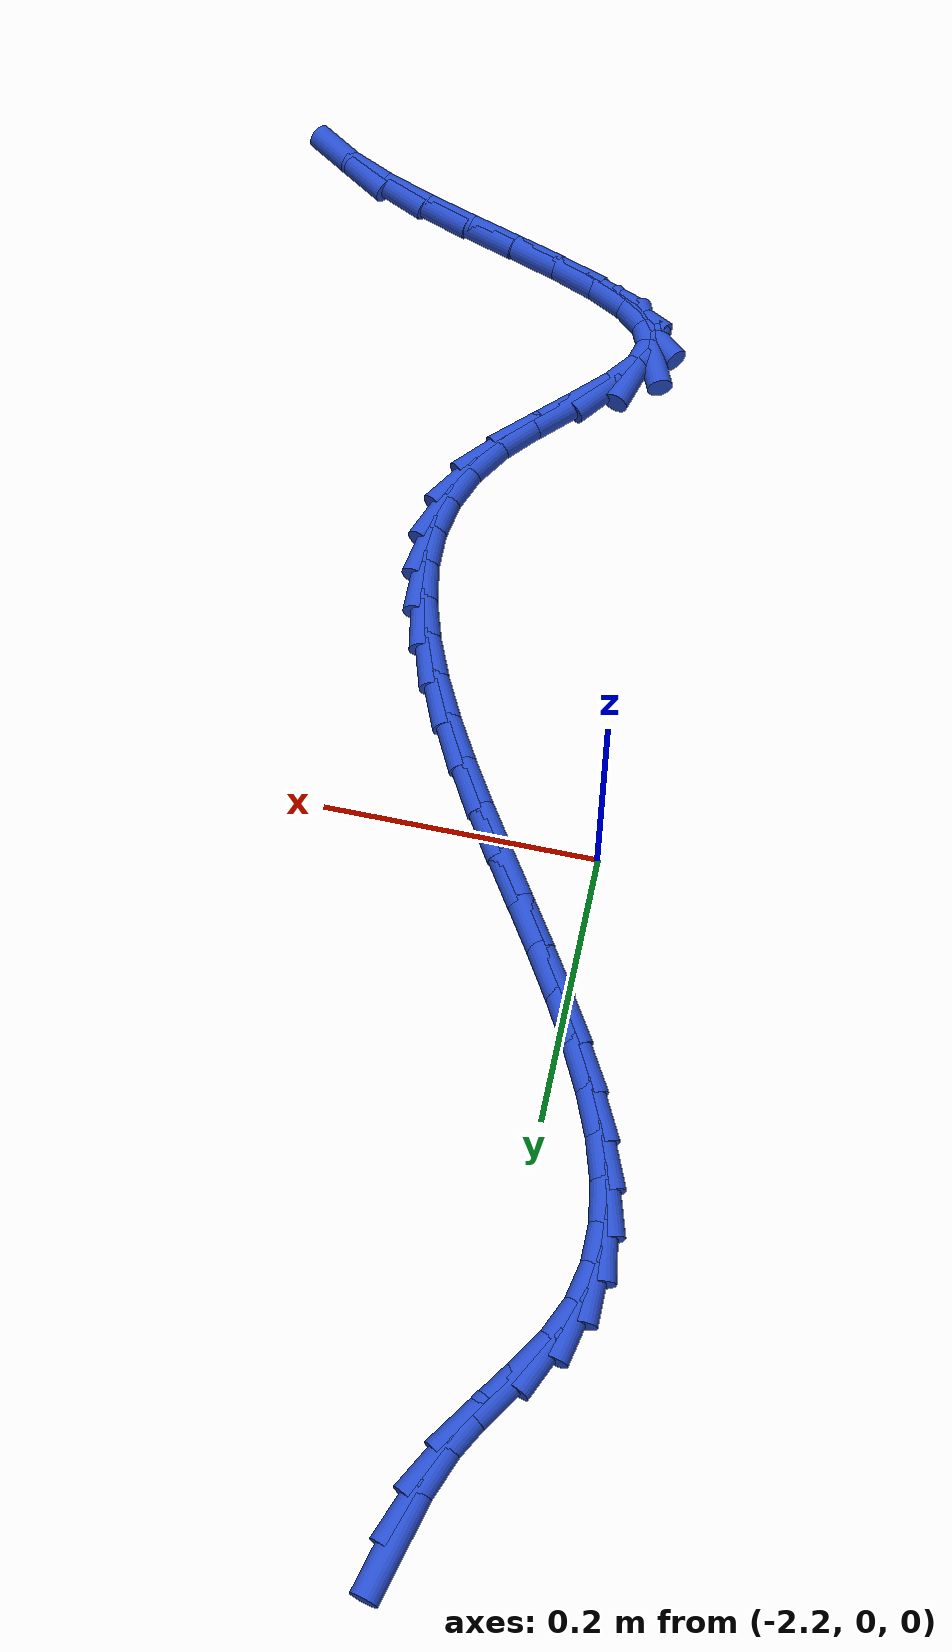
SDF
<sdf version="1.6">
 <world name="default">
  <model name="ground_plane">
   <static>1</static>
   <link name="link">
    <collision name="collision">
     <geometry><plane><normal>0 0 1</normal><size>100 100</size></plane></geometry>
     <surface><friction><ode><mu>100</mu><mu2>50</mu2></ode></friction></surface>
    </collision>
    <visual name="visual">
     <cast_shadows>0</cast_shadows>
     <geometry><plane><normal>0 0 1</normal><size>100 100</size></plane></geometry>
     <material>
      <script><uri>file://media/materials/scripts/gazebo.material</uri><name>Gazebo/WhiteGlow</name></script>
     </material>
    </visual>
   </link>
  </model>
  <model name="line">
   <link name="link_105">
    <pose>-2.166392597063999 0.49061659449763584 0.01 0 1.57 1.3138846447954526</pose>
    <collision name="collision">
     <geometry><cylinder><radius>0.01</radius><length>0.08</length></cylinder></geometry>
    </collision>
    <visual name="visual">
     <material>
      <script><name>Gazebo/Blue</name><uri>file://media/materials/scripts/gazebo.material</uri></script>
     </material>
     <geometry><cylinder><radius>0.01</radius><length>0.08</length></cylinder></geometry>
    </visual>
   </link>
   <link name="link_106">
    <pose>-2.1748294054325177 0.45850296532958423 0.01 0 1.57 1.2026230256502024</pose>
    <collision name="collision">
     <geometry><cylinder><radius>0.01</radius><length>0.08</length></cylinder></geometry>
    </collision>
    <visual name="visual">
     <material>
      <script><name>Gazebo/Blue</name><uri>file://media/materials/scripts/gazebo.material</uri></script>
     </material>
     <geometry><cylinder><radius>0.01</radius><length>0.08</length></cylinder></geometry>
    </visual>
   </link>
   <link name="link_107">
    <pose>-2.1866053342522225 0.4279766462369585 0.01 0 1.57 1.063967401844877</pose>
    <collision name="collision">
     <geometry><cylinder><radius>0.01</radius><length>0.08</length></cylinder></geometry>
    </collision>
    <visual name="visual">
     <material>
      <script><name>Gazebo/Blue</name><uri>file://media/materials/scripts/gazebo.material</uri></script>
     </material>
     <geometry><cylinder><radius>0.01</radius><length>0.08</length></cylinder></geometry>
    </visual>
   </link>
   <link name="link_108">
    <pose>-2.202412725093497 0.39950526583668833 0.01 0 1.57 0.9683545614591776</pose>
    <collision name="collision">
     <geometry><cylinder><radius>0.01</radius><length>0.08</length></cylinder></geometry>
    </collision>
    <visual name="visual">
     <material>
      <script><name>Gazebo/Blue</name><uri>file://media/materials/scripts/gazebo.material</uri></script>
     </material>
     <geometry><cylinder><radius>0.01</radius><length>0.08</length></cylinder></geometry>
    </visual>
   </link>
   <link name="link_109">
    <pose>-2.2207858610285784 0.37278954225350963 0.01 0 1.57 0.9926242602724146</pose>
    <collision name="collision">
     <geometry><cylinder><radius>0.01</radius><length>0.08</length></cylinder></geometry>
    </collision>
    <visual name="visual">
     <material>
      <script><name>Gazebo/Blue</name><uri>file://media/materials/scripts/gazebo.material</uri></script>
     </material>
     <geometry><cylinder><radius>0.01</radius><length>0.08</length></cylinder></geometry>
    </visual>
   </link>
   <link name="link_110">
    <pose>-2.237831922253378 0.3466676726642364 0.01 0 1.57 1.1502114993911183</pose>
    <collision name="collision">
     <geometry><cylinder><radius>0.01</radius><length>0.08</length></cylinder></geometry>
    </collision>
    <visual name="visual">
     <material>
      <script><name>Gazebo/Blue</name><uri>file://media/materials/scripts/gazebo.material</uri></script>
     </material>
     <geometry><cylinder><radius>0.01</radius><length>0.08</length></cylinder></geometry>
    </visual>
   </link>
   <link name="link_111">
    <pose>-2.249761268795965 0.3199964564878411 0.01 0 1.57 1.3669415555956064</pose>
    <collision name="collision">
     <geometry><cylinder><radius>0.01</radius><length>0.08</length></cylinder></geometry>
    </collision>
    <visual name="visual">
     <material>
      <script><name>Gazebo/Blue</name><uri>file://media/materials/scripts/gazebo.material</uri></script>
     </material>
     <geometry><cylinder><radius>0.01</radius><length>0.08</length></cylinder></geometry>
    </visual>
   </link>
   <link name="link_112">
    <pose>-2.255470620269235 0.2923785397529792 0.01 0 1.57 1.5668667545896071</pose>
    <collision name="collision">
     <geometry><cylinder><radius>0.01</radius><length>0.08</length></cylinder></geometry>
    </collision>
    <visual name="visual">
     <material>
      <script><name>Gazebo/Blue</name><uri>file://media/materials/scripts/gazebo.material</uri></script>
     </material>
     <geometry><cylinder><radius>0.01</radius><length>0.08</length></cylinder></geometry>
    </visual>
   </link>
   <link name="link_113">
    <pose>-2.255582546074941 0.263895737107844 0.01 0 1.57 -1.4070392870814017</pose>
    <collision name="collision">
     <geometry><cylinder><radius>0.01</radius><length>0.08</length></cylinder></geometry>
    </collision>
    <visual name="visual">
     <material>
      <script><name>Gazebo/Blue</name><uri>file://media/materials/scripts/gazebo.material</uri></script>
     </material>
     <geometry><cylinder><radius>0.01</radius><length>0.08</length></cylinder></geometry>
    </visual>
   </link>
   <link name="link_114">
    <pose>-2.250748054225831 0.23463775895729272 0.01 0 1.57 -1.2748457538411404</pose>
    <collision name="collision">
     <geometry><cylinder><radius>0.01</radius><length>0.08</length></cylinder></geometry>
    </collision>
    <visual name="visual">
     <material>
      <script><name>Gazebo/Blue</name><uri>file://media/materials/scripts/gazebo.material</uri></script>
     </material>
     <geometry><cylinder><radius>0.01</radius><length>0.08</length></cylinder></geometry>
    </visual>
   </link>
   <link name="link_115">
    <pose>-2.2416181527346555 0.20469431570618296 0.01 0 1.57 -1.1746210812547353</pose>
    <collision name="collision">
     <geometry><cylinder><radius>0.01</radius><length>0.08</length></cylinder></geometry>
    </collision>
    <visual name="visual">
     <material>
      <script><name>Gazebo/Blue</name><uri>file://media/materials/scripts/gazebo.material</uri></script>
     </material>
     <geometry><cylinder><radius>0.01</radius><length>0.08</length></cylinder></geometry>
    </visual>
   </link>
   <link name="link_116">
    <pose>-2.2288438496141616 0.17415511775937198 0.01 0 1.57 -1.1008533644518215</pose>
    <collision name="collision">
     <geometry><cylinder><radius>0.01</radius><length>0.08</length></cylinder></geometry>
    </collision>
    <visual name="visual">
     <material>
      <script><name>Gazebo/Blue</name><uri>file://media/materials/scripts/gazebo.material</uri></script>
     </material>
     <geometry><cylinder><radius>0.01</radius><length>0.08</length></cylinder></geometry>
    </visual>
   </link>
   <link name="link_117">
    <pose>-2.2130761528770972 0.1431098755217173 0.01 0 1.57 -1.0484921693017508</pose>
    <collision name="collision">
     <geometry><cylinder><radius>0.01</radius><length>0.08</length></cylinder></geometry>
    </collision>
    <visual name="visual">
     <material>
      <script><name>Gazebo/Blue</name><uri>file://media/materials/scripts/gazebo.material</uri></script>
     </material>
     <geometry><cylinder><radius>0.01</radius><length>0.08</length></cylinder></geometry>
    </visual>
   </link>
   <link name="link_118">
    <pose>-2.1949660705362124 0.11164829939807638 0.01 0 1.57 -1.013695168403488</pose>
    <collision name="collision">
     <geometry><cylinder><radius>0.01</radius><length>0.08</length></cylinder></geometry>
    </collision>
    <visual name="visual">
     <material>
      <script><name>Gazebo/Blue</name><uri>file://media/materials/scripts/gazebo.material</uri></script>
     </material>
     <geometry><cylinder><radius>0.01</radius><length>0.08</length></cylinder></geometry>
    </visual>
   </link>
   <link name="link_119">
    <pose>-2.175164610604255 0.07986009979330663 0.01 0 1.57 -0.9938614183253438</pose>
    <collision name="collision">
     <geometry><cylinder><radius>0.01</radius><length>0.08</length></cylinder></geometry>
    </collision>
    <visual name="visual">
     <material>
      <script><name>Gazebo/Blue</name><uri>file://media/materials/scripts/gazebo.material</uri></script>
     </material>
     <geometry><cylinder><radius>0.01</radius><length>0.08</length></cylinder></geometry>
    </visual>
   </link>
   <link name="link_120">
    <pose>-2.154322781093973 0.047834987112265935 0.01 0 1.57 -0.9874782524019726</pose>
    <collision name="collision">
     <geometry><cylinder><radius>0.01</radius><length>0.08</length></cylinder></geometry>
    </collision>
    <visual name="visual">
     <material>
      <script><name>Gazebo/Blue</name><uri>file://media/materials/scripts/gazebo.material</uri></script>
     </material>
     <geometry><cylinder><radius>0.01</radius><length>0.08</length></cylinder></geometry>
    </visual>
   </link>
   <link name="link_121">
    <pose>-2.1330915900181164 0.01566267175981084 0.01 0 1.57 -0.9939812965675945</pose>
    <collision name="collision">
     <geometry><cylinder><radius>0.01</radius><length>0.08</length></cylinder></geometry>
    </collision>
    <visual name="visual">
     <material>
      <script><name>Gazebo/Blue</name><uri>file://media/materials/scripts/gazebo.material</uri></script>
     </material>
     <geometry><cylinder><radius>0.01</radius><length>0.08</length></cylinder></geometry>
    </visual>
   </link>
   <link name="link_122">
    <pose>-2.112122045389432 -0.016567135859200777 0.01 0 1.57 -1.0136859120466164</pose>
    <collision name="collision">
     <geometry><cylinder><radius>0.01</radius><length>0.08</length></cylinder></geometry>
    </collision>
    <visual name="visual">
     <material>
      <script><name>Gazebo/Blue</name><uri>file://media/materials/scripts/gazebo.material</uri></script>
     </material>
     <geometry><cylinder><radius>0.01</radius><length>0.08</length></cylinder></geometry>
    </visual>
   </link>
   <link name="link_123">
    <pose>-2.092065155220668 -0.04876472533991143 0.01 0 1.57 -1.0477978351316828</pose>
    <collision name="collision">
     <geometry><cylinder><radius>0.01</radius><length>0.08</length></cylinder></geometry>
    </collision>
    <visual name="visual">
     <material>
      <script><name>Gazebo/Blue</name><uri>file://media/materials/scripts/gazebo.material</uri></script>
     </material>
     <geometry><cylinder><radius>0.01</radius><length>0.08</length></cylinder></geometry>
    </visual>
   </link>
   <link name="link_124">
    <pose>-2.0735719275245756 -0.08084038627746379 0.01 0 1.57 -1.0984859939159963</pose>
    <collision name="collision">
     <geometry><cylinder><radius>0.01</radius><length>0.08</length></cylinder></geometry>
    </collision>
    <visual name="visual">
     <material>
      <script><name>Gazebo/Blue</name><uri>file://media/materials/scripts/gazebo.material</uri></script>
     </material>
     <geometry><cylinder><radius>0.01</radius><length>0.08</length></cylinder></geometry>
    </visual>
   </link>
   <link name="link_125">
    <pose>-2.0572933703139005 -0.11270440826700036 0.01 0 1.57 -1.1689594166580637</pose>
    <collision name="collision">
     <geometry><cylinder><radius>0.01</radius><length>0.08</length></cylinder></geometry>
    </collision>
    <visual name="visual">
     <material>
      <script><name>Gazebo/Blue</name><uri>file://media/materials/scripts/gazebo.material</uri></script>
     </material>
     <geometry><cylinder><radius>0.01</radius><length>0.08</length></cylinder></geometry>
    </visual>
   </link>
   <link name="link_126">
    <pose>-2.0438804916013926 -0.1442670809036637 0.01 0 1.57 -1.2633859699856875</pose>
    <collision name="collision">
     <geometry><cylinder><radius>0.01</radius><length>0.08</length></cylinder></geometry>
    </collision>
    <visual name="visual">
     <material>
      <script><name>Gazebo/Blue</name><uri>file://media/materials/scripts/gazebo.material</uri></script>
     </material>
     <geometry><cylinder><radius>0.01</radius><length>0.08</length></cylinder></geometry>
    </visual>
   </link>
   <link name="link_127">
    <pose>-2.0339842993998003 -0.1754386937825964 0.01 0 1.57 -1.3862680014800317</pose>
    <collision name="collision">
     <geometry><cylinder><radius>0.01</radius><length>0.08</length></cylinder></geometry>
    </collision>
    <visual name="visual">
     <material>
      <script><name>Gazebo/Blue</name><uri>file://media/materials/scripts/gazebo.material</uri></script>
     </material>
     <geometry><cylinder><radius>0.01</radius><length>0.08</length></cylinder></geometry>
    </visual>
   </link>
   <link name="link_128">
    <pose>-2.0282558017218717 -0.20612953649894095 0.01 0 1.57 -1.5406001890095606</pose>
    <collision name="collision">
     <geometry><cylinder><radius>0.01</radius><length>0.08</length></cylinder></geometry>
    </collision>
    <visual name="visual">
     <material>
      <script><name>Gazebo/Blue</name><uri>file://media/materials/scripts/gazebo.material</uri></script>
     </material>
     <geometry><cylinder><radius>0.01</radius><length>0.08</length></cylinder></geometry>
    </visual>
   </link>
   <link name="link_129">
    <pose>-2.027346006580356 -0.23624989864784002 0.01 0 1.57 1.4172325480909496</pose>
    <collision name="collision">
     <geometry><cylinder><radius>0.01</radius><length>0.08</length></cylinder></geometry>
    </collision>
    <visual name="visual">
     <material>
      <script><name>Gazebo/Blue</name><uri>file://media/materials/scripts/gazebo.material</uri></script>
     </material>
     <geometry><cylinder><radius>0.01</radius><length>0.08</length></cylinder></geometry>
    </visual>
   </link>
   <link name="link_130">
    <pose>-2.0319059219880007 -0.2657100698244361 0.01 0 1.57 1.2146457292525412</pose>
    <collision name="collision">
     <geometry><cylinder><radius>0.01</radius><length>0.08</length></cylinder></geometry>
    </collision>
    <visual name="visual">
     <material>
      <script><name>Gazebo/Blue</name><uri>file://media/materials/scripts/gazebo.material</uri></script>
     </material>
     <geometry><cylinder><radius>0.01</radius><length>0.08</length></cylinder></geometry>
    </visual>
   </link>
   <link name="link_131">
    <pose>-2.0425865559575556 -0.2944203396238718 0.01 0 1.57 1.011427321078649</pose>
    <collision name="collision">
     <geometry><cylinder><radius>0.01</radius><length>0.08</length></cylinder></geometry>
    </collision>
    <visual name="visual">
     <material>
      <script><name>Gazebo/Blue</name><uri>file://media/materials/scripts/gazebo.material</uri></script>
     </material>
     <geometry><cylinder><radius>0.01</radius><length>0.08</length></cylinder></geometry>
    </visual>
   </link>
   <link name="link_132">
    <pose>-2.0600354586276772 -0.3222908309960116 0.01 0 1.57 0.8513179049936774</pose>
    <collision name="collision">
     <geometry><cylinder><radius>0.01</radius><length>0.08</length></cylinder></geometry>
    </collision>
    <visual name="visual">
     <material>
      <script><name>Gazebo/Blue</name><uri>file://media/materials/scripts/gazebo.material</uri></script>
     </material>
     <geometry><cylinder><radius>0.01</radius><length>0.08</length></cylinder></geometry>
    </visual>
   </link>
   <link name="link_133">
    <pose>-2.083583975813405 -0.3491682350740047 0.01 0 1.57 0.7831837263390689</pose>
    <collision name="collision">
     <geometry><cylinder><radius>0.01</radius><length>0.08</length></cylinder></geometry>
    </collision>
    <visual name="visual">
     <material>
      <script><name>Gazebo/Blue</name><uri>file://media/materials/scripts/gazebo.material</uri></script>
     </material>
     <geometry><cylinder><radius>0.01</radius><length>0.08</length></cylinder></geometry>
    </visual>
   </link>
   <link name="link_134">
    <pose>-2.1092697586779963 -0.3747405100103234 0.01 0 1.57 0.7975962454983031</pose>
    <collision name="collision">
     <geometry><cylinder><radius>0.01</radius><length>0.08</length></cylinder></geometry>
    </collision>
    <visual name="visual">
     <material>
      <script><name>Gazebo/Blue</name><uri>file://media/materials/scripts/gazebo.material</uri></script>
     </material>
     <geometry><cylinder><radius>0.01</radius><length>0.08</length></cylinder></geometry>
    </visual>
   </link>
   <link name="link_135">
    <pose>-2.1326236275365593 -0.39867118826540415 0.01 0 1.57 0.9247254869982229</pose>
    <collision name="collision">
     <geometry><cylinder><radius>0.01</radius><length>0.08</length></cylinder></geometry>
    </collision>
    <visual name="visual">
     <material>
      <script><name>Gazebo/Blue</name><uri>file://media/materials/scripts/gazebo.material</uri></script>
     </material>
     <geometry><cylinder><radius>0.01</radius><length>0.08</length></cylinder></geometry>
    </visual>
   </link>
   <link name="link_136">
    <pose>-2.1491764027042093 -0.42062380229968344 0.01 0 1.57 1.3040360797091823</pose>
    <collision name="collision">
     <geometry><cylinder><radius>0.01</radius><length>0.08</length></cylinder></geometry>
    </collision>
    <visual name="visual">
     <material>
      <script><name>Gazebo/Blue</name><uri>file://media/materials/scripts/gazebo.material</uri></script>
     </material>
     <geometry><cylinder><radius>0.01</radius><length>0.08</length></cylinder></geometry>
    </visual>
   </link>
   <link name="link_137">
    <pose>-2.1545458431613596 -0.4402724088359977 0.01 0 1.57 -1.1717308039247594</pose>
    <collision name="collision">
     <geometry><cylinder><radius>0.01</radius><length>0.08</length></cylinder></geometry>
    </collision>
    <visual name="visual">
     <material>
      <script><name>Gazebo/Blue</name><uri>file://media/materials/scripts/gazebo.material</uri></script>
     </material>
     <geometry><cylinder><radius>0.01</radius><length>0.08</length></cylinder></geometry>
    </visual>
   </link>
   <link name="link_138">
    <pose>-2.1472225581537447 -0.4576388342566753 0.01 0 1.57 -0.7099919715146517</pose>
    <collision name="collision">
     <geometry><cylinder><radius>0.01</radius><length>0.08</length></cylinder></geometry>
    </collision>
    <visual name="visual">
     <material>
      <script><name>Gazebo/Blue</name><uri>file://media/materials/scripts/gazebo.material</uri></script>
     </material>
     <geometry><cylinder><radius>0.01</radius><length>0.08</length></cylinder></geometry>
    </visual>
   </link>
   <link name="link_139">
    <pose>-2.1291597685919412 -0.4731640675068019 0.01 0 1.57 -0.4882154766300119</pose>
    <collision name="collision">
     <geometry><cylinder><radius>0.01</radius><length>0.08</length></cylinder></geometry>
    </collision>
    <visual name="visual">
     <material>
      <script><name>Gazebo/Blue</name><uri>file://media/materials/scripts/gazebo.material</uri></script>
     </material>
     <geometry><cylinder><radius>0.01</radius><length>0.08</length></cylinder></geometry>
    </visual>
   </link>
   <link name="link_140">
    <pose>-2.102516876930998 -0.4873140566065609 0.01 0 1.57 -0.38090409606596376</pose>
    <collision name="collision">
     <geometry><cylinder><radius>0.01</radius><length>0.08</length></cylinder></geometry>
    </collision>
    <visual name="visual">
     <material>
      <script><name>Gazebo/Blue</name><uri>file://media/materials/scripts/gazebo.material</uri></script>
     </material>
     <geometry><cylinder><radius>0.01</radius><length>0.08</length></cylinder></geometry>
    </visual>
   </link>
   <link name="link_141">
    <pose>-2.0694532856259658 -0.5005547495761354 0.01 0 1.57 -0.33030311408001256</pose>
    <collision name="collision">
     <geometry><cylinder><radius>0.01</radius><length>0.08</length></cylinder></geometry>
    </collision>
    <visual name="visual">
     <material>
      <script><name>Gazebo/Blue</name><uri>file://media/materials/scripts/gazebo.material</uri></script>
     </material>
     <geometry><cylinder><radius>0.01</radius><length>0.08</length></cylinder></geometry>
    </visual>
   </link>
   <link name="link_142">
    <pose>-2.03212839713189 -0.5133520944357085 0.01 0 1.57 -0.31437504552106865</pose>
    <collision name="collision">
     <geometry><cylinder><radius>0.01</radius><length>0.08</length></cylinder></geometry>
    </collision>
    <visual name="visual">
     <material>
      <script><name>Gazebo/Blue</name><uri>file://media/materials/scripts/gazebo.material</uri></script>
     </material>
     <geometry><cylinder><radius>0.01</radius><length>0.08</length></cylinder></geometry>
    </visual>
   </link>
   <link name="link_143">
    <pose>-1.992701613903822 -0.5261720392054633 0.01 0 1.57 -0.32598289993485685</pose>
    <collision name="collision">
     <geometry><cylinder><radius>0.01</radius><length>0.08</length></cylinder></geometry>
    </collision>
    <visual name="visual">
     <material>
      <script><name>Gazebo/Blue</name><uri>file://media/materials/scripts/gazebo.material</uri></script>
     </material>
     <geometry><cylinder><radius>0.01</radius><length>0.08</length></cylinder></geometry>
    </visual>
   </link>
   <link name="link_144">
    <pose>-1.95333233839681 -0.5394805319055831 0.01 0 1.57 -0.36655507715692487</pose>
    <collision name="collision">
     <geometry><cylinder><radius>0.01</radius><length>0.08</length></cylinder></geometry>
    </collision>
    <visual name="visual">
     <material>
      <script><name>Gazebo/Blue</name><uri>file://media/materials/scripts/gazebo.material</uri></script>
     </material>
     <geometry><cylinder><radius>0.01</radius><length>0.08</length></cylinder></geometry>
    </visual>
   </link>
   <link name="link_145">
    <pose>-1.9161799730659024 -0.5537435205562502 0.01 0 1.57 -0.4463024154101826</pose>
    <collision name="collision">
     <geometry><cylinder><radius>0.01</radius><length>0.08</length></cylinder></geometry>
    </collision>
    <visual name="visual">
     <material>
      <script><name>Gazebo/Blue</name><uri>file://media/materials/scripts/gazebo.material</uri></script>
     </material>
     <geometry><cylinder><radius>0.01</radius><length>0.08</length></cylinder></geometry>
    </visual>
   </link>
   <link name="link_146">
    <pose>-1.8834039203661472 -0.5694269531776489 0.01 0 1.57 -0.590012062281802</pose>
    <collision name="collision">
     <geometry><cylinder><radius>0.01</radius><length>0.08</length></cylinder></geometry>
    </collision>
    <visual name="visual">
     <material>
      <script><name>Gazebo/Blue</name><uri>file://media/materials/scripts/gazebo.material</uri></script>
     </material>
     <geometry><cylinder><radius>0.01</radius><length>0.08</length></cylinder></geometry>
    </visual>
   </link>
  </model>
 </world>
</sdf>
